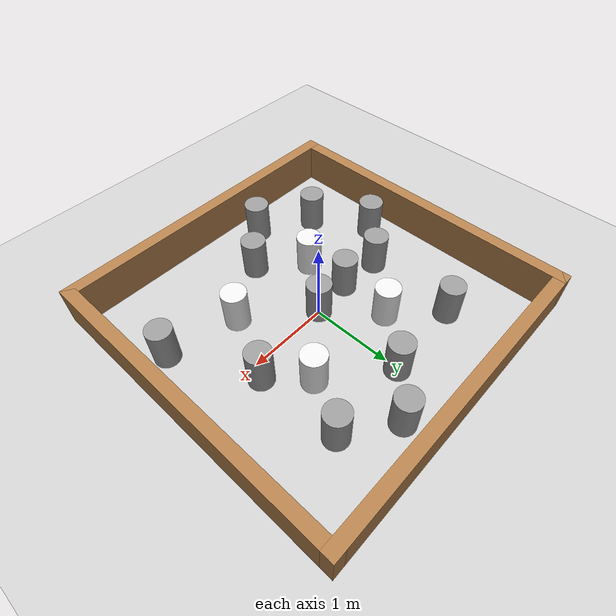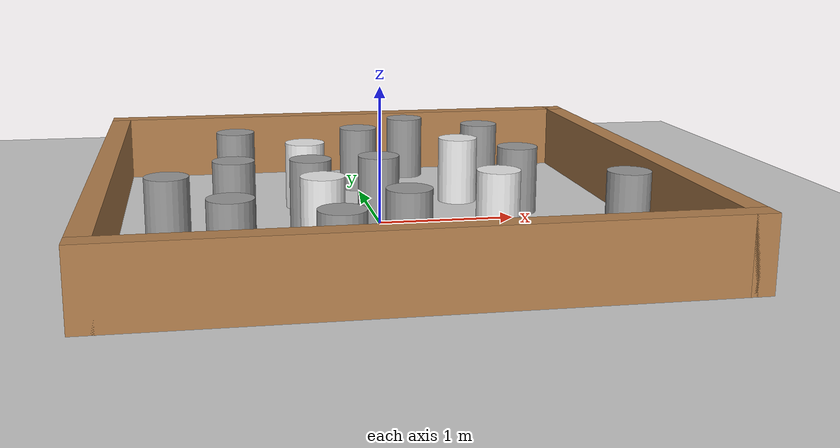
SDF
<sdf version="1.6">
 <world name="default">
  <light name="sun" type="directional">
   <pose>0 0 10 0 -0 0</pose>
   <diffuse>0.8 0.8 0.8 1</diffuse>
   <specular>0.1 0.1 0.1 1</specular>
   <attenuation>
    <range>1000</range>
    <constant>0.9</constant>
    <linear>0.01</linear>
    <quadratic>0.001</quadratic>
   </attenuation>
   <direction>-0.5 0.5 -1</direction>
  </light>
  <model name="ground_plane">
   <static>1</static>
   <link name="link">
    <collision name="collision">
     <geometry><plane><normal>0 0 1</normal><size>100 100</size></plane></geometry>
     <surface><friction><ode><mu>100</mu><mu2>50</mu2></ode></friction></surface>
    </collision>
    <visual name="visual">
     <cast_shadows>0</cast_shadows>
     <geometry><plane><normal>0 0 1</normal><size>100 100</size></plane></geometry>
     <material>
      <script><uri>file://media/materials/scripts/gazebo.material</uri><name>Gazebo/Grey</name></script>
     </material>
    </visual>
   </link>
  </model>
  <physics name="default_physics" default="0" type="ode">
   <real_time_update_rate>1000</real_time_update_rate>
   <max_step_size>0.001</max_step_size>
   <real_time_factor>1</real_time_factor>
   <ode>
    <solver>
     <type>quick</type>
     <iters>150</iters>
     <precon_iters>0</precon_iters>
     <sor>1.4</sor>
     <use_dynamic_moi_rescaling>1</use_dynamic_moi_rescaling>
    </solver>
    <constraints>
     <cfm>1e-05</cfm>
     <erp>0.2</erp>
     <contact_max_correcting_vel>2000</contact_max_correcting_vel>
     <contact_surface_layer>0.01</contact_surface_layer>
    </constraints>
   </ode>
  </physics>
  <model name="turtlebot3_square">
   <link name="Wall_0">
    <collision name="Wall_0_Collision">
     <geometry><box><size>4 0.15 0.5</size></box></geometry>
     <pose>0 0 0.25 0 -0 0</pose>
    </collision>
    <visual name="Wall_0_Visual">
     <pose>0 0 0.25 0 -0 0</pose>
     <geometry><box><size>4 0.15 0.5</size></box></geometry>
     <material>
      <script><uri>file://media/materials/scripts/gazebo.material</uri><name>Gazebo/Wood</name></script>
      <ambient>1 1 1 1</ambient>
     </material>
    </visual>
    <pose>0 1.925 0 0 -0 0</pose>
   </link>
   <link name="Wall_2">
    <collision name="Wall_2_Collision">
     <geometry><box><size>4 0.15 0.5</size></box></geometry>
     <pose>0 0 0.25 0 -0 0</pose>
    </collision>
    <visual name="Wall_2_Visual">
     <pose>0 0 0.25 0 -0 0</pose>
     <geometry><box><size>4 0.15 0.5</size></box></geometry>
     <material>
      <script><uri>file://media/materials/scripts/gazebo.material</uri><name>Gazebo/Wood</name></script>
      <ambient>1 1 1 1</ambient>
     </material>
    </visual>
    <pose>-1.925 0 0 0 0 -1.5708</pose>
   </link>
   <link name="Wall_3">
    <collision name="Wall_3_Collision">
     <geometry><box><size>4 0.15 0.5</size></box></geometry>
     <pose>0 0 0.25 0 -0 0</pose>
    </collision>
    <visual name="Wall_3_Visual">
     <pose>0 0 0.25 0 -0 0</pose>
     <geometry><box><size>4 0.15 0.5</size></box></geometry>
     <material>
      <script><uri>file://media/materials/scripts/gazebo.material</uri><name>Gazebo/Wood</name></script>
      <ambient>1 1 1 1</ambient>
     </material>
    </visual>
    <pose>0 -1.925 0 0 -0 0</pose>
   </link>
   <link name="Wall_4">
    <collision name="Wall_4_Collision">
     <geometry><box><size>4 0.15 0.5</size></box></geometry>
     <pose>0 0 0.25 0 -0 0</pose>
    </collision>
    <visual name="Wall_4_Visual">
     <pose>0 0 0.25 0 -0 0</pose>
     <geometry><box><size>4 0.15 0.5</size></box></geometry>
     <material>
      <script><uri>file://media/materials/scripts/gazebo.material</uri><name>Gazebo/Wood</name></script>
      <ambient>1 1 1 1</ambient>
     </material>
    </visual>
    <pose>1.925 0 0 0 -0 1.5708</pose>
   </link>
   <static>1</static>
  </model>
  <scene><ambient>0.4 0.4 0.4 1</ambient><background>0.7 0.7 0.7 1</background><shadows>1</shadows></scene>
  <gravity>0 0 -9.8</gravity>
  <magnetic_field>6e-06 2.3e-05 -4.2e-05</magnetic_field>
  <atmosphere type="adiabatic"/>
  <spherical_coordinates>
   <surface_model>EARTH_WGS84</surface_model>
   <latitude_deg>0</latitude_deg>
   <longitude_deg>0</longitude_deg>
   <elevation>0</elevation>
   <heading_deg>0</heading_deg>
  </spherical_coordinates>
  <model name="obstacle_0_0">
   <link name="obstacle">
    <pose>0.019198 -0.000112 0 0 -0 0</pose>
    <inertial>
     <inertia><ixx>1</ixx><ixy>0</ixy><ixz>0</ixz><iyy>1</iyy><iyz>0</iyz><izz>1</izz></inertia>
     <mass>1</mass>
    </inertial>
    <visual name="obstacle_1">
     <pose>-0.5 -0.6 0.25 0 -0 0</pose>
     <geometry><cylinder><radius>0.15</radius><length>0.5</length></cylinder></geometry>
     <material>
      <script><uri>file://media/materials/scripts/gazebo.material</uri><name>Gazebo/White</name></script>
      <ambient>1 1 1 1</ambient>
      <diffuse>1 1 1 1</diffuse>
      <specular>0 0 0 1</specular>
      <emissive>0 0 0 1</emissive>
      <shader type="vertex"><normal_map>__default__</normal_map></shader>
     </material>
    </visual>
    <visual name="obstacle_2">
     <pose>-0.5 0.6 0.25 0 -0 0</pose>
     <geometry><cylinder><radius>0.15</radius><length>0.5</length></cylinder></geometry>
     <material>
      <script><uri>file://media/materials/scripts/gazebo.material</uri><name>Gazebo/White</name></script>
      <ambient>1 1 1 1</ambient>
      <diffuse>1 1 1 1</diffuse>
      <specular>0 0 0 1</specular>
      <emissive>0 0 0 1</emissive>
      <shader type="vertex"><normal_map>__default__</normal_map></shader>
     </material>
    </visual>
    <visual name="obstacle_4">
     <pose>0.7 0.6 0.25 0 -0 0</pose>
     <geometry><cylinder><radius>0.15</radius><length>0.5</length></cylinder></geometry>
     <material>
      <script><uri>file://media/materials/scripts/gazebo.material</uri><name>Gazebo/White</name></script>
      <ambient>1 1 1 1</ambient>
      <diffuse>1 1 1 1</diffuse>
      <specular>0 0 0 1</specular>
      <emissive>0 0 0 1</emissive>
      <shader type="vertex"><normal_map>__default__</normal_map></shader>
     </material>
    </visual>
    <visual name="obstacle_3">
     <pose>0.7 -0.6 0.25 0 -0 0</pose>
     <geometry><cylinder><radius>0.15</radius><length>0.5</length></cylinder></geometry>
     <material>
      <script><uri>file://media/materials/scripts/gazebo.material</uri><name>Gazebo/White</name></script>
      <ambient>1 1 1 1</ambient>
      <diffuse>1 1 1 1</diffuse>
      <specular>0 0 0 1</specular>
      <emissive>0 0 0 1</emissive>
      <shader type="vertex"><normal_map>__default__</normal_map></shader>
     </material>
    </visual>
    <collision name="obstacle_1">
     <pose>-0.5 -0.6 0.25 0 -0 0</pose>
     <geometry><cylinder><radius>0.15</radius><length>0.5</length></cylinder></geometry>
     <surface>
      <friction>
       <ode><mu>1</mu><mu2>1</mu2><fdir1>0 0 0</fdir1><slip1>0</slip1><slip2>0</slip2></ode>
       <torsional>
        <coefficient>1</coefficient>
        <patch_radius>0</patch_radius>
        <surface_radius>0</surface_radius>
        <use_patch_radius>1</use_patch_radius>
        <ode><slip>0</slip></ode>
       </torsional>
      </friction>
      <bounce><restitution_coefficient>0</restitution_coefficient><threshold>1e+06</threshold></bounce>
      <contact>
       <collide_without_contact>0</collide_without_contact>
       <collide_without_contact_bitmask>1</collide_without_contact_bitmask>
       <collide_bitmask>1</collide_bitmask>
       <ode>
        <soft_cfm>0</soft_cfm>
        <soft_erp>0.2</soft_erp>
        <kp>1e+13</kp>
        <kd>1</kd>
        <max_vel>0.01</max_vel>
        <min_depth>0</min_depth>
       </ode>
       <bullet>
        <split_impulse>1</split_impulse>
        <split_impulse_penetration_threshold>-0.01</split_impulse_penetration_threshold>
        <soft_cfm>0</soft_cfm>
        <soft_erp>0.2</soft_erp>
        <kp>1e+13</kp>
        <kd>1</kd>
       </bullet>
      </contact>
     </surface>
    </collision>
    <collision name="obstacle_2">
     <pose>-0.5 0.6 0.25 0 -0 0</pose>
     <geometry><cylinder><radius>0.15</radius><length>0.5</length></cylinder></geometry>
     <surface>
      <friction>
       <ode><mu>1</mu><mu2>1</mu2><fdir1>0 0 0</fdir1><slip1>0</slip1><slip2>0</slip2></ode>
       <torsional>
        <coefficient>1</coefficient>
        <patch_radius>0</patch_radius>
        <surface_radius>0</surface_radius>
        <use_patch_radius>1</use_patch_radius>
        <ode><slip>0</slip></ode>
       </torsional>
      </friction>
      <bounce><restitution_coefficient>0</restitution_coefficient><threshold>1e+06</threshold></bounce>
      <contact>
       <collide_without_contact>0</collide_without_contact>
       <collide_without_contact_bitmask>1</collide_without_contact_bitmask>
       <collide_bitmask>1</collide_bitmask>
       <ode>
        <soft_cfm>0</soft_cfm>
        <soft_erp>0.2</soft_erp>
        <kp>1e+13</kp>
        <kd>1</kd>
        <max_vel>0.01</max_vel>
        <min_depth>0</min_depth>
       </ode>
       <bullet>
        <split_impulse>1</split_impulse>
        <split_impulse_penetration_threshold>-0.01</split_impulse_penetration_threshold>
        <soft_cfm>0</soft_cfm>
        <soft_erp>0.2</soft_erp>
        <kp>1e+13</kp>
        <kd>1</kd>
       </bullet>
      </contact>
     </surface>
    </collision>
    <collision name="obstacle_3">
     <pose>0.7 -0.6 0.25 0 -0 0</pose>
     <geometry><cylinder><radius>0.15</radius><length>0.5</length></cylinder></geometry>
     <surface>
      <friction>
       <ode><mu>1</mu><mu2>1</mu2><fdir1>0 0 0</fdir1><slip1>0</slip1><slip2>0</slip2></ode>
       <torsional>
        <coefficient>1</coefficient>
        <patch_radius>0</patch_radius>
        <surface_radius>0</surface_radius>
        <use_patch_radius>1</use_patch_radius>
        <ode><slip>0</slip></ode>
       </torsional>
      </friction>
      <bounce><restitution_coefficient>0</restitution_coefficient><threshold>1e+06</threshold></bounce>
      <contact>
       <collide_without_contact>0</collide_without_contact>
       <collide_without_contact_bitmask>1</collide_without_contact_bitmask>
       <collide_bitmask>1</collide_bitmask>
       <ode>
        <soft_cfm>0</soft_cfm>
        <soft_erp>0.2</soft_erp>
        <kp>1e+13</kp>
        <kd>1</kd>
        <max_vel>0.01</max_vel>
        <min_depth>0</min_depth>
       </ode>
       <bullet>
        <split_impulse>1</split_impulse>
        <split_impulse_penetration_threshold>-0.01</split_impulse_penetration_threshold>
        <soft_cfm>0</soft_cfm>
        <soft_erp>0.2</soft_erp>
        <kp>1e+13</kp>
        <kd>1</kd>
       </bullet>
      </contact>
     </surface>
    </collision>
    <collision name="obstacle_4">
     <pose>0.7 0.6 0.25 0 -0 0</pose>
     <geometry><cylinder><radius>0.15</radius><length>0.5</length></cylinder></geometry>
     <surface>
      <friction>
       <ode><mu>1</mu><mu2>1</mu2><fdir1>0 0 0</fdir1><slip1>0</slip1><slip2>0</slip2></ode>
       <torsional>
        <coefficient>1</coefficient>
        <patch_radius>0</patch_radius>
        <surface_radius>0</surface_radius>
        <use_patch_radius>1</use_patch_radius>
        <ode><slip>0</slip></ode>
       </torsional>
      </friction>
      <bounce><restitution_coefficient>0</restitution_coefficient><threshold>1e+06</threshold></bounce>
      <contact>
       <collide_without_contact>0</collide_without_contact>
       <collide_without_contact_bitmask>1</collide_without_contact_bitmask>
       <collide_bitmask>1</collide_bitmask>
       <ode>
        <soft_cfm>0</soft_cfm>
        <soft_erp>0.2</soft_erp>
        <kp>1e+13</kp>
        <kd>1</kd>
        <max_vel>0.01</max_vel>
        <min_depth>0</min_depth>
       </ode>
       <bullet>
        <split_impulse>1</split_impulse>
        <split_impulse_penetration_threshold>-0.01</split_impulse_penetration_threshold>
        <soft_cfm>0</soft_cfm>
        <soft_erp>0.2</soft_erp>
        <kp>1e+13</kp>
        <kd>1</kd>
       </bullet>
      </contact>
     </surface>
    </collision>
   </link>
   <link name="link_0">
    <pose>-0.503484 -0.044602 0.252602 0 1e-06 0</pose>
    <inertial>
     <mass>1</mass>
     <inertia><ixx>0.145833</ixx><ixy>0</ixy><ixz>0</ixz><iyy>0.145833</iyy><iyz>0</iyz><izz>0.125</izz></inertia>
    </inertial>
    <visual name="visual">
     <geometry><cylinder><radius>0.15</radius><length>0.5</length></cylinder></geometry>
     <material>
      <lighting>1</lighting>
      <script><uri>file://media/materials/scripts/gazebo.material</uri><name>Gazebo/Grey</name></script>
      <ambient>1 1 1 1</ambient>
      <diffuse>1 1 1 1</diffuse>
      <specular>0.01 0.01 0.01 1</specular>
      <emissive>0 0 0 1</emissive>
      <shader type="vertex"><normal_map>__default__</normal_map></shader>
     </material>
    </visual>
    <collision name="collision">
     <geometry><cylinder><radius>0.15</radius><length>0.5</length></cylinder></geometry>
     <surface>
      <friction>
       <ode><mu>1</mu><mu2>1</mu2><fdir1>0 0 0</fdir1><slip1>0</slip1><slip2>0</slip2></ode>
       <torsional>
        <coefficient>1</coefficient>
        <patch_radius>0</patch_radius>
        <surface_radius>0</surface_radius>
        <use_patch_radius>1</use_patch_radius>
        <ode><slip>0</slip></ode>
       </torsional>
      </friction>
      <bounce><restitution_coefficient>0</restitution_coefficient><threshold>1e+06</threshold></bounce>
      <contact>
       <collide_without_contact>0</collide_without_contact>
       <collide_without_contact_bitmask>1</collide_without_contact_bitmask>
       <collide_bitmask>1</collide_bitmask>
       <ode>
        <soft_cfm>0</soft_cfm>
        <soft_erp>0.2</soft_erp>
        <kp>1e+13</kp>
        <kd>1</kd>
        <max_vel>0.01</max_vel>
        <min_depth>0</min_depth>
       </ode>
       <bullet>
        <split_impulse>1</split_impulse>
        <split_impulse_penetration_threshold>-0.01</split_impulse_penetration_threshold>
        <soft_cfm>0</soft_cfm>
        <soft_erp>0.2</soft_erp>
        <kp>1e+13</kp>
        <kd>1</kd>
       </bullet>
      </contact>
     </surface>
    </collision>
   </link>
   <link name="link_0_clone">
    <pose>0.016524 -1.04734 0.253152 0 2e-06 0</pose>
    <inertial>
     <mass>1</mass>
     <inertia><ixx>0.145833</ixx><ixy>0</ixy><ixz>0</ixz><iyy>0.145833</iyy><iyz>0</iyz><izz>0.125</izz></inertia>
    </inertial>
    <visual name="visual">
     <geometry><cylinder><radius>0.15</radius><length>0.5</length></cylinder></geometry>
     <material>
      <lighting>1</lighting>
      <script><uri>file://media/materials/scripts/gazebo.material</uri><name>Gazebo/Grey</name></script>
      <ambient>1 1 1 1</ambient>
      <diffuse>1 1 1 1</diffuse>
      <specular>0.01 0.01 0.01 1</specular>
      <emissive>0 0 0 1</emissive>
      <shader type="vertex"><normal_map>__default__</normal_map></shader>
     </material>
    </visual>
    <collision name="collision">
     <geometry><cylinder><radius>0.15</radius><length>0.5</length></cylinder></geometry>
     <surface>
      <friction>
       <ode><mu>1</mu><mu2>1</mu2><fdir1>0 0 0</fdir1><slip1>0</slip1><slip2>0</slip2></ode>
       <torsional>
        <coefficient>1</coefficient>
        <patch_radius>0</patch_radius>
        <surface_radius>0</surface_radius>
        <use_patch_radius>1</use_patch_radius>
        <ode><slip>0</slip></ode>
       </torsional>
      </friction>
      <bounce><restitution_coefficient>0</restitution_coefficient><threshold>1e+06</threshold></bounce>
      <contact>
       <collide_without_contact>0</collide_without_contact>
       <collide_without_contact_bitmask>1</collide_without_contact_bitmask>
       <collide_bitmask>1</collide_bitmask>
       <ode>
        <soft_cfm>0</soft_cfm>
        <soft_erp>0.2</soft_erp>
        <kp>1e+13</kp>
        <kd>1</kd>
        <max_vel>0.01</max_vel>
        <min_depth>0</min_depth>
       </ode>
       <bullet>
        <split_impulse>1</split_impulse>
        <split_impulse_penetration_threshold>-0.01</split_impulse_penetration_threshold>
        <soft_cfm>0</soft_cfm>
        <soft_erp>0.2</soft_erp>
        <kp>1e+13</kp>
        <kd>1</kd>
       </bullet>
      </contact>
     </surface>
    </collision>
   </link>
   <link name="link_0_clone_0">
    <pose>1.07625 0.173526 0.253151 0 2e-06 0</pose>
    <inertial>
     <mass>1</mass>
     <inertia><ixx>0.145833</ixx><ixy>0</ixy><ixz>0</ixz><iyy>0.145833</iyy><iyz>0</iyz><izz>0.125</izz></inertia>
    </inertial>
    <visual name="visual">
     <geometry><cylinder><radius>0.15</radius><length>0.5</length></cylinder></geometry>
     <material>
      <lighting>1</lighting>
      <script><uri>file://media/materials/scripts/gazebo.material</uri><name>Gazebo/Grey</name></script>
      <ambient>1 1 1 1</ambient>
      <diffuse>1 1 1 1</diffuse>
      <specular>0.01 0.01 0.01 1</specular>
      <emissive>0 0 0 1</emissive>
      <shader type="vertex"><normal_map>__default__</normal_map></shader>
     </material>
    </visual>
    <collision name="collision">
     <geometry><cylinder><radius>0.15</radius><length>0.5</length></cylinder></geometry>
     <surface>
      <friction>
       <ode><mu>1</mu><mu2>1</mu2><fdir1>0 0 0</fdir1><slip1>0</slip1><slip2>0</slip2></ode>
       <torsional>
        <coefficient>1</coefficient>
        <patch_radius>0</patch_radius>
        <surface_radius>0</surface_radius>
        <use_patch_radius>1</use_patch_radius>
        <ode><slip>0</slip></ode>
       </torsional>
      </friction>
      <bounce><restitution_coefficient>0</restitution_coefficient><threshold>1e+06</threshold></bounce>
      <contact>
       <collide_without_contact>0</collide_without_contact>
       <collide_without_contact_bitmask>1</collide_without_contact_bitmask>
       <collide_bitmask>1</collide_bitmask>
       <ode>
        <soft_cfm>0</soft_cfm>
        <soft_erp>0.2</soft_erp>
        <kp>1e+13</kp>
        <kd>1</kd>
        <max_vel>0.01</max_vel>
        <min_depth>0</min_depth>
       </ode>
       <bullet>
        <split_impulse>1</split_impulse>
        <split_impulse_penetration_threshold>-0.01</split_impulse_penetration_threshold>
        <soft_cfm>0</soft_cfm>
        <soft_erp>0.2</soft_erp>
        <kp>1e+13</kp>
        <kd>1</kd>
       </bullet>
      </contact>
     </surface>
    </collision>
   </link>
   <link name="link_0_clone_1">
    <pose>0.010874 1.1546 0.253152 0 2e-06 0</pose>
    <inertial>
     <mass>1</mass>
     <inertia><ixx>0.145833</ixx><ixy>0</ixy><ixz>0</ixz><iyy>0.145833</iyy><iyz>0</iyz><izz>0.125</izz></inertia>
    </inertial>
    <visual name="visual">
     <geometry><cylinder><radius>0.15</radius><length>0.5</length></cylinder></geometry>
     <material>
      <lighting>1</lighting>
      <script><uri>file://media/materials/scripts/gazebo.material</uri><name>Gazebo/Grey</name></script>
      <ambient>1 1 1 1</ambient>
      <diffuse>1 1 1 1</diffuse>
      <specular>0.01 0.01 0.01 1</specular>
      <emissive>0 0 0 1</emissive>
      <shader type="vertex"><normal_map>__default__</normal_map></shader>
     </material>
    </visual>
    <collision name="collision">
     <geometry><cylinder><radius>0.15</radius><length>0.5</length></cylinder></geometry>
     <surface>
      <friction>
       <ode><mu>1</mu><mu2>1</mu2><fdir1>0 0 0</fdir1><slip1>0</slip1><slip2>0</slip2></ode>
       <torsional>
        <coefficient>1</coefficient>
        <patch_radius>0</patch_radius>
        <surface_radius>0</surface_radius>
        <use_patch_radius>1</use_patch_radius>
        <ode><slip>0</slip></ode>
       </torsional>
      </friction>
      <bounce><restitution_coefficient>0</restitution_coefficient><threshold>1e+06</threshold></bounce>
      <contact>
       <collide_without_contact>0</collide_without_contact>
       <collide_without_contact_bitmask>1</collide_without_contact_bitmask>
       <collide_bitmask>1</collide_bitmask>
       <ode>
        <soft_cfm>0</soft_cfm>
        <soft_erp>0.2</soft_erp>
        <kp>1e+13</kp>
        <kd>1</kd>
        <max_vel>0.01</max_vel>
        <min_depth>0</min_depth>
       </ode>
       <bullet>
        <split_impulse>1</split_impulse>
        <split_impulse_penetration_threshold>-0.01</split_impulse_penetration_threshold>
        <soft_cfm>0</soft_cfm>
        <soft_erp>0.2</soft_erp>
        <kp>1e+13</kp>
        <kd>1</kd>
       </bullet>
      </contact>
     </surface>
    </collision>
   </link>
   <link name="link_0_clone_2">
    <pose>-1.0435 -0.018193 0.253153 0 2e-06 0</pose>
    <inertial>
     <mass>1</mass>
     <inertia><ixx>0.145833</ixx><ixy>0</ixy><ixz>0</ixz><iyy>0.145833</iyy><iyz>0</iyz><izz>0.125</izz></inertia>
    </inertial>
    <visual name="visual">
     <geometry><cylinder><radius>0.15</radius><length>0.5</length></cylinder></geometry>
     <material>
      <lighting>1</lighting>
      <script><uri>file://media/materials/scripts/gazebo.material</uri><name>Gazebo/Grey</name></script>
      <ambient>1 1 1 1</ambient>
      <diffuse>1 1 1 1</diffuse>
      <specular>0.01 0.01 0.01 1</specular>
      <emissive>0 0 0 1</emissive>
      <shader type="vertex"><normal_map>__default__</normal_map></shader>
     </material>
    </visual>
    <collision name="collision">
     <geometry><cylinder><radius>0.15</radius><length>0.5</length></cylinder></geometry>
     <surface>
      <friction>
       <ode><mu>1</mu><mu2>1</mu2><fdir1>0 0 0</fdir1><slip1>0</slip1><slip2>0</slip2></ode>
       <torsional>
        <coefficient>1</coefficient>
        <patch_radius>0</patch_radius>
        <surface_radius>0</surface_radius>
        <use_patch_radius>1</use_patch_radius>
        <ode><slip>0</slip></ode>
       </torsional>
      </friction>
      <bounce><restitution_coefficient>0</restitution_coefficient><threshold>1e+06</threshold></bounce>
      <contact>
       <collide_without_contact>0</collide_without_contact>
       <collide_without_contact_bitmask>1</collide_without_contact_bitmask>
       <collide_bitmask>1</collide_bitmask>
       <ode>
        <soft_cfm>0</soft_cfm>
        <soft_erp>0.2</soft_erp>
        <kp>1e+13</kp>
        <kd>1</kd>
        <max_vel>0.01</max_vel>
        <min_depth>0</min_depth>
       </ode>
       <bullet>
        <split_impulse>1</split_impulse>
        <split_impulse_penetration_threshold>-0.01</split_impulse_penetration_threshold>
        <soft_cfm>0</soft_cfm>
        <soft_erp>0.2</soft_erp>
        <kp>1e+13</kp>
        <kd>1</kd>
       </bullet>
      </contact>
     </surface>
    </collision>
   </link>
   <link name="link_0_clone_3">
    <pose>-1.10094 -1.13451 0.253153 0 2e-06 0</pose>
    <inertial>
     <mass>1</mass>
     <inertia><ixx>0.145833</ixx><ixy>0</ixy><ixz>0</ixz><iyy>0.145833</iyy><iyz>0</iyz><izz>0.125</izz></inertia>
    </inertial>
    <visual name="visual">
     <geometry><cylinder><radius>0.15</radius><length>0.5</length></cylinder></geometry>
     <material>
      <lighting>1</lighting>
      <script><uri>file://media/materials/scripts/gazebo.material</uri><name>Gazebo/Grey</name></script>
      <ambient>1 1 1 1</ambient>
      <diffuse>1 1 1 1</diffuse>
      <specular>0.01 0.01 0.01 1</specular>
      <emissive>0 0 0 1</emissive>
      <shader type="vertex"><normal_map>__default__</normal_map></shader>
     </material>
    </visual>
    <collision name="collision">
     <geometry><cylinder><radius>0.15</radius><length>0.5</length></cylinder></geometry>
     <surface>
      <friction>
       <ode><mu>1</mu><mu2>1</mu2><fdir1>0 0 0</fdir1><slip1>0</slip1><slip2>0</slip2></ode>
       <torsional>
        <coefficient>1</coefficient>
        <patch_radius>0</patch_radius>
        <surface_radius>0</surface_radius>
        <use_patch_radius>1</use_patch_radius>
        <ode><slip>0</slip></ode>
       </torsional>
      </friction>
      <bounce><restitution_coefficient>0</restitution_coefficient><threshold>1e+06</threshold></bounce>
      <contact>
       <collide_without_contact>0</collide_without_contact>
       <collide_without_contact_bitmask>1</collide_without_contact_bitmask>
       <collide_bitmask>1</collide_bitmask>
       <ode>
        <soft_cfm>0</soft_cfm>
        <soft_erp>0.2</soft_erp>
        <kp>1e+13</kp>
        <kd>1</kd>
        <max_vel>0.01</max_vel>
        <min_depth>0</min_depth>
       </ode>
       <bullet>
        <split_impulse>1</split_impulse>
        <split_impulse_penetration_threshold>-0.01</split_impulse_penetration_threshold>
        <soft_cfm>0</soft_cfm>
        <soft_erp>0.2</soft_erp>
        <kp>1e+13</kp>
        <kd>1</kd>
       </bullet>
      </contact>
     </surface>
    </collision>
   </link>
   <link name="link_0_clone_4">
    <pose>-1.49706 -0.463675 0.253153 0 2e-06 0</pose>
    <inertial>
     <mass>1</mass>
     <inertia><ixx>0.145833</ixx><ixy>0</ixy><ixz>0</ixz><iyy>0.145833</iyy><iyz>0</iyz><izz>0.125</izz></inertia>
    </inertial>
    <visual name="visual">
     <geometry><cylinder><radius>0.15</radius><length>0.5</length></cylinder></geometry>
     <material>
      <lighting>1</lighting>
      <script><uri>file://media/materials/scripts/gazebo.material</uri><name>Gazebo/Grey</name></script>
      <ambient>1 1 1 1</ambient>
      <diffuse>1 1 1 1</diffuse>
      <specular>0.01 0.01 0.01 1</specular>
      <emissive>0 0 0 1</emissive>
      <shader type="vertex"><normal_map>__default__</normal_map></shader>
     </material>
    </visual>
    <collision name="collision">
     <geometry><cylinder><radius>0.15</radius><length>0.5</length></cylinder></geometry>
     <surface>
      <friction>
       <ode><mu>1</mu><mu2>1</mu2><fdir1>0 0 0</fdir1><slip1>0</slip1><slip2>0</slip2></ode>
       <torsional>
        <coefficient>1</coefficient>
        <patch_radius>0</patch_radius>
        <surface_radius>0</surface_radius>
        <use_patch_radius>1</use_patch_radius>
        <ode><slip>0</slip></ode>
       </torsional>
      </friction>
      <bounce><restitution_coefficient>0</restitution_coefficient><threshold>1e+06</threshold></bounce>
      <contact>
       <collide_without_contact>0</collide_without_contact>
       <collide_without_contact_bitmask>1</collide_without_contact_bitmask>
       <collide_bitmask>1</collide_bitmask>
       <ode>
        <soft_cfm>0</soft_cfm>
        <soft_erp>0.2</soft_erp>
        <kp>1e+13</kp>
        <kd>1</kd>
        <max_vel>0.01</max_vel>
        <min_depth>0</min_depth>
       </ode>
       <bullet>
        <split_impulse>1</split_impulse>
        <split_impulse_penetration_threshold>-0.01</split_impulse_penetration_threshold>
        <soft_cfm>0</soft_cfm>
        <soft_erp>0.2</soft_erp>
        <kp>1e+13</kp>
        <kd>1</kd>
       </bullet>
      </contact>
     </surface>
    </collision>
   </link>
   <link name="link_0_clone_5">
    <pose>1.57444 -0.786538 0.253151 0 2e-06 0</pose>
    <inertial>
     <mass>1</mass>
     <inertia><ixx>0.145833</ixx><ixy>0</ixy><ixz>0</ixz><iyy>0.145833</iyy><iyz>0</iyz><izz>0.125</izz></inertia>
    </inertial>
    <visual name="visual">
     <geometry><cylinder><radius>0.15</radius><length>0.5</length></cylinder></geometry>
     <material>
      <lighting>1</lighting>
      <script><uri>file://media/materials/scripts/gazebo.material</uri><name>Gazebo/Grey</name></script>
      <ambient>1 1 1 1</ambient>
      <diffuse>1 1 1 1</diffuse>
      <specular>0.01 0.01 0.01 1</specular>
      <emissive>0 0 0 1</emissive>
      <shader type="vertex"><normal_map>__default__</normal_map></shader>
     </material>
    </visual>
    <collision name="collision">
     <geometry><cylinder><radius>0.15</radius><length>0.5</length></cylinder></geometry>
     <surface>
      <friction>
       <ode><mu>1</mu><mu2>1</mu2><fdir1>0 0 0</fdir1><slip1>0</slip1><slip2>0</slip2></ode>
       <torsional>
        <coefficient>1</coefficient>
        <patch_radius>0</patch_radius>
        <surface_radius>0</surface_radius>
        <use_patch_radius>1</use_patch_radius>
        <ode><slip>0</slip></ode>
       </torsional>
      </friction>
      <bounce><restitution_coefficient>0</restitution_coefficient><threshold>1e+06</threshold></bounce>
      <contact>
       <collide_without_contact>0</collide_without_contact>
       <collide_without_contact_bitmask>1</collide_without_contact_bitmask>
       <collide_bitmask>1</collide_bitmask>
       <ode>
        <soft_cfm>0</soft_cfm>
        <soft_erp>0.2</soft_erp>
        <kp>1e+13</kp>
        <kd>1</kd>
        <max_vel>0.01</max_vel>
        <min_depth>0</min_depth>
       </ode>
       <bullet>
        <split_impulse>1</split_impulse>
        <split_impulse_penetration_threshold>-0.01</split_impulse_penetration_threshold>
        <soft_cfm>0</soft_cfm>
        <soft_erp>0.2</soft_erp>
        <kp>1e+13</kp>
        <kd>1</kd>
       </bullet>
      </contact>
     </surface>
    </collision>
   </link>
   <link name="link_0_clone_5_clone">
    <pose>0.47687 1.57721 0.253148 -2e-06 2e-06 -0</pose>
    <inertial>
     <mass>1</mass>
     <inertia><ixx>0.145833</ixx><ixy>0</ixy><ixz>0</ixz><iyy>0.145833</iyy><iyz>0</iyz><izz>0.125</izz></inertia>
    </inertial>
    <visual name="visual">
     <geometry><cylinder><radius>0.15</radius><length>0.5</length></cylinder></geometry>
     <material>
      <lighting>1</lighting>
      <script><uri>file://media/materials/scripts/gazebo.material</uri><name>Gazebo/Grey</name></script>
      <ambient>1 1 1 1</ambient>
      <diffuse>1 1 1 1</diffuse>
      <specular>0.01 0.01 0.01 1</specular>
      <emissive>0 0 0 1</emissive>
      <shader type="vertex"><normal_map>__default__</normal_map></shader>
     </material>
    </visual>
    <collision name="collision">
     <geometry><cylinder><radius>0.15</radius><length>0.5</length></cylinder></geometry>
     <surface>
      <friction>
       <ode><mu>1</mu><mu2>1</mu2><fdir1>0 0 0</fdir1><slip1>0</slip1><slip2>0</slip2></ode>
       <torsional>
        <coefficient>1</coefficient>
        <patch_radius>0</patch_radius>
        <surface_radius>0</surface_radius>
        <use_patch_radius>1</use_patch_radius>
        <ode><slip>0</slip></ode>
       </torsional>
      </friction>
      <bounce><restitution_coefficient>0</restitution_coefficient><threshold>1e+06</threshold></bounce>
      <contact>
       <collide_without_contact>0</collide_without_contact>
       <collide_without_contact_bitmask>1</collide_without_contact_bitmask>
       <collide_bitmask>1</collide_bitmask>
       <ode>
        <soft_cfm>0</soft_cfm>
        <soft_erp>0.2</soft_erp>
        <kp>1e+13</kp>
        <kd>1</kd>
        <max_vel>0.01</max_vel>
        <min_depth>0</min_depth>
       </ode>
       <bullet>
        <split_impulse>1</split_impulse>
        <split_impulse_penetration_threshold>-0.01</split_impulse_penetration_threshold>
        <soft_cfm>0</soft_cfm>
        <soft_erp>0.2</soft_erp>
        <kp>1e+13</kp>
        <kd>1</kd>
       </bullet>
      </contact>
     </surface>
    </collision>
   </link>
   <link name="link_0_clone_6">
    <pose>-0.989636 1.10564 0.253153 0 2e-06 0</pose>
    <inertial>
     <mass>1</mass>
     <inertia><ixx>0.145833</ixx><ixy>0</ixy><ixz>0</ixz><iyy>0.145833</iyy><iyz>0</iyz><izz>0.125</izz></inertia>
    </inertial>
    <visual name="visual">
     <geometry><cylinder><radius>0.15</radius><length>0.5</length></cylinder></geometry>
     <material>
      <lighting>1</lighting>
      <script><uri>file://media/materials/scripts/gazebo.material</uri><name>Gazebo/Grey</name></script>
      <ambient>1 1 1 1</ambient>
      <diffuse>1 1 1 1</diffuse>
      <specular>0.01 0.01 0.01 1</specular>
      <emissive>0 0 0 1</emissive>
      <shader type="vertex"><normal_map>__default__</normal_map></shader>
     </material>
    </visual>
    <collision name="collision">
     <geometry><cylinder><radius>0.15</radius><length>0.5</length></cylinder></geometry>
     <surface>
      <friction>
       <ode><mu>1</mu><mu2>1</mu2><fdir1>0 0 0</fdir1><slip1>0</slip1><slip2>0</slip2></ode>
       <torsional>
        <coefficient>1</coefficient>
        <patch_radius>0</patch_radius>
        <surface_radius>0</surface_radius>
        <use_patch_radius>1</use_patch_radius>
        <ode><slip>0</slip></ode>
       </torsional>
      </friction>
      <bounce><restitution_coefficient>0</restitution_coefficient><threshold>1e+06</threshold></bounce>
      <contact>
       <collide_without_contact>0</collide_without_contact>
       <collide_without_contact_bitmask>1</collide_without_contact_bitmask>
       <collide_bitmask>1</collide_bitmask>
       <ode>
        <soft_cfm>0</soft_cfm>
        <soft_erp>0.2</soft_erp>
        <kp>1e+13</kp>
        <kd>1</kd>
        <max_vel>0.01</max_vel>
        <min_depth>0</min_depth>
       </ode>
       <bullet>
        <split_impulse>1</split_impulse>
        <split_impulse_penetration_threshold>-0.01</split_impulse_penetration_threshold>
        <soft_cfm>0</soft_cfm>
        <soft_erp>0.2</soft_erp>
        <kp>1e+13</kp>
        <kd>1</kd>
       </bullet>
      </contact>
     </surface>
    </collision>
   </link>
   <link name="link_0_clone_7">
    <pose>1.03711 1.18887 0.253151 0 2e-06 0</pose>
    <inertial>
     <mass>1</mass>
     <inertia><ixx>0.145833</ixx><ixy>0</ixy><ixz>0</ixz><iyy>0.145833</iyy><iyz>0</iyz><izz>0.125</izz></inertia>
    </inertial>
    <visual name="visual">
     <geometry><cylinder><radius>0.15</radius><length>0.5</length></cylinder></geometry>
     <material>
      <lighting>1</lighting>
      <script><uri>file://media/materials/scripts/gazebo.material</uri><name>Gazebo/Grey</name></script>
      <ambient>1 1 1 1</ambient>
      <diffuse>1 1 1 1</diffuse>
      <specular>0.01 0.01 0.01 1</specular>
      <emissive>0 0 0 1</emissive>
      <shader type="vertex"><normal_map>__default__</normal_map></shader>
     </material>
    </visual>
    <collision name="collision">
     <geometry><cylinder><radius>0.15</radius><length>0.5</length></cylinder></geometry>
     <surface>
      <friction>
       <ode><mu>1</mu><mu2>1</mu2><fdir1>0 0 0</fdir1><slip1>0</slip1><slip2>0</slip2></ode>
       <torsional>
        <coefficient>1</coefficient>
        <patch_radius>0</patch_radius>
        <surface_radius>0</surface_radius>
        <use_patch_radius>1</use_patch_radius>
        <ode><slip>0</slip></ode>
       </torsional>
      </friction>
      <bounce><restitution_coefficient>0</restitution_coefficient><threshold>1e+06</threshold></bounce>
      <contact>
       <collide_without_contact>0</collide_without_contact>
       <collide_without_contact_bitmask>1</collide_without_contact_bitmask>
       <collide_bitmask>1</collide_bitmask>
       <ode>
        <soft_cfm>0</soft_cfm>
        <soft_erp>0.2</soft_erp>
        <kp>1e+13</kp>
        <kd>1</kd>
        <max_vel>0.01</max_vel>
        <min_depth>0</min_depth>
       </ode>
       <bullet>
        <split_impulse>1</split_impulse>
        <split_impulse_penetration_threshold>-0.01</split_impulse_penetration_threshold>
        <soft_cfm>0</soft_cfm>
        <soft_erp>0.2</soft_erp>
        <kp>1e+13</kp>
        <kd>1</kd>
       </bullet>
      </contact>
     </surface>
    </collision>
   </link>
   <link name="link_0_clone_8">
    <pose>-0.007535 0.000629 0.252602 -2e-06 1e-06 -0</pose>
    <inertial>
     <mass>1</mass>
     <inertia><ixx>0.145833</ixx><ixy>0</ixy><ixz>0</ixz><iyy>0.145833</iyy><iyz>0</iyz><izz>0.125</izz></inertia>
    </inertial>
    <visual name="visual">
     <geometry><cylinder><radius>0.15</radius><length>0.5</length></cylinder></geometry>
     <material>
      <lighting>1</lighting>
      <script><uri>file://media/materials/scripts/gazebo.material</uri><name>Gazebo/Grey</name></script>
      <ambient>1 1 1 1</ambient>
      <diffuse>1 1 1 1</diffuse>
      <specular>0.01 0.01 0.01 1</specular>
      <emissive>0 0 0 1</emissive>
      <shader type="vertex"><normal_map>__default__</normal_map></shader>
     </material>
    </visual>
    <collision name="collision">
     <geometry><cylinder><radius>0.15</radius><length>0.5</length></cylinder></geometry>
     <surface>
      <friction>
       <ode><mu>1</mu><mu2>1</mu2><fdir1>0 0 0</fdir1><slip1>0</slip1><slip2>0</slip2></ode>
       <torsional>
        <coefficient>1</coefficient>
        <patch_radius>0</patch_radius>
        <surface_radius>0</surface_radius>
        <use_patch_radius>1</use_patch_radius>
        <ode><slip>0</slip></ode>
       </torsional>
      </friction>
      <bounce><restitution_coefficient>0</restitution_coefficient><threshold>1e+06</threshold></bounce>
      <contact>
       <collide_without_contact>0</collide_without_contact>
       <collide_without_contact_bitmask>1</collide_without_contact_bitmask>
       <collide_bitmask>1</collide_bitmask>
       <ode>
        <soft_cfm>0</soft_cfm>
        <soft_erp>0.2</soft_erp>
        <kp>1e+13</kp>
        <kd>1</kd>
        <max_vel>0.01</max_vel>
        <min_depth>0</min_depth>
       </ode>
       <bullet>
        <split_impulse>1</split_impulse>
        <split_impulse_penetration_threshold>-0.01</split_impulse_penetration_threshold>
        <soft_cfm>0</soft_cfm>
        <soft_erp>0.2</soft_erp>
        <kp>1e+13</kp>
        <kd>1</kd>
       </bullet>
      </contact>
     </surface>
    </collision>
   </link>
   <link name="link_0_clone_clone">
    <pose>-0.469568 -1.51 0.253155 -2e-06 2e-06 -0</pose>
    <inertial>
     <mass>1</mass>
     <inertia><ixx>0.145833</ixx><ixy>0</ixy><ixz>0</ixz><iyy>0.145833</iyy><iyz>0</iyz><izz>0.125</izz></inertia>
    </inertial>
    <visual name="visual">
     <geometry><cylinder><radius>0.15</radius><length>0.5</length></cylinder></geometry>
     <material>
      <lighting>1</lighting>
      <script><uri>file://media/materials/scripts/gazebo.material</uri><name>Gazebo/Grey</name></script>
      <ambient>1 1 1 1</ambient>
      <diffuse>1 1 1 1</diffuse>
      <specular>0.01 0.01 0.01 1</specular>
      <emissive>0 0 0 1</emissive>
      <shader type="vertex"><normal_map>__default__</normal_map></shader>
     </material>
    </visual>
    <collision name="collision">
     <geometry><cylinder><radius>0.15</radius><length>0.5</length></cylinder></geometry>
     <surface>
      <friction>
       <ode><mu>1</mu><mu2>1</mu2><fdir1>0 0 0</fdir1><slip1>0</slip1><slip2>0</slip2></ode>
       <torsional>
        <coefficient>1</coefficient>
        <patch_radius>0</patch_radius>
        <surface_radius>0</surface_radius>
        <use_patch_radius>1</use_patch_radius>
        <ode><slip>0</slip></ode>
       </torsional>
      </friction>
      <bounce><restitution_coefficient>0</restitution_coefficient><threshold>1e+06</threshold></bounce>
      <contact>
       <collide_without_contact>0</collide_without_contact>
       <collide_without_contact_bitmask>1</collide_without_contact_bitmask>
       <collide_bitmask>1</collide_bitmask>
       <ode>
        <soft_cfm>0</soft_cfm>
        <soft_erp>0.2</soft_erp>
        <kp>1e+13</kp>
        <kd>1</kd>
        <max_vel>0.01</max_vel>
        <min_depth>0</min_depth>
       </ode>
       <bullet>
        <split_impulse>1</split_impulse>
        <split_impulse_penetration_threshold>-0.01</split_impulse_penetration_threshold>
        <soft_cfm>0</soft_cfm>
        <soft_erp>0.2</soft_erp>
        <kp>1e+13</kp>
        <kd>1</kd>
       </bullet>
      </contact>
     </surface>
    </collision>
   </link>
   <static>0</static>
  </model>
 </world>
</sdf>
